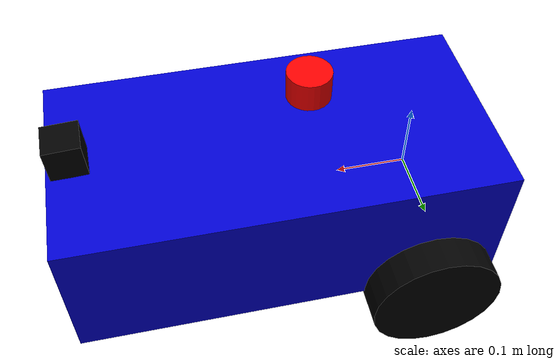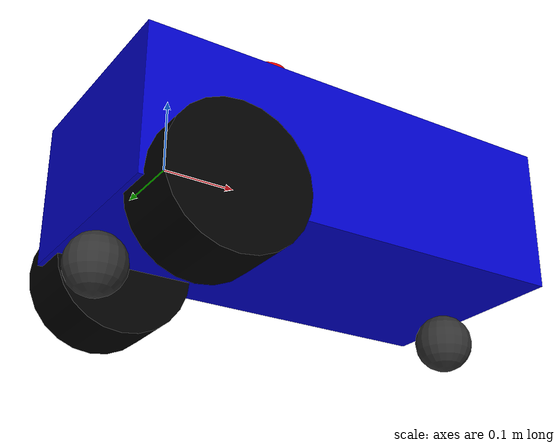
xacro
<?xml version="1.0"?>
<robot xmlns:xacro="http://www.ros.org/wiki/xacro" name="diffbot">

  <!-- Core robot kinematics and links -->
  <xacro:include filename="$(find diff_drive_hardware)/config/diffbot_description.xacro" />

  <!-- Gazebo simulation sensors, physics properties, and ros2_control plugin -->
  <xacro:include filename="$(find relobot_gazebo)/config/diffbot_gazebo_plugins.xacro" />

</robot>

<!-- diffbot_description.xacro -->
<robot xmlns:xacro="http://www.ros.org/wiki/xacro">

  <!-- Base Link (Root Frame) -->

  <!-- Base Link -->
  <link name="base_link">
    <visual>
      <origin xyz="0.2 0 0" rpy="0 0 0"/>
      <geometry>
        <box size="0.6 0.3 0.2"/>
      </geometry>
      <material name="blue">
        <color rgba="0 0 0.8 1"/>
      </material>
    </visual>
    <collision>
      <geometry>
        <box size="0.2 0.3 0.1"/>
      </geometry>
    </collision>
    <inertial>
      <origin xyz="0.18 0.0 -0.02" rpy="0 0 0"/>
      <mass value="12.0"/>
      <inertia ixx="0.15" ixy="0" ixz="0" iyy="0.40" iyz="0" izz="0.45"/>
    </inertial>
  </link>

  <link name="imu_link">
    <visual>
      <geometry>
        <box size="0.04 0.04 0.02"/>
      </geometry>
      <material name="orange">
        <color rgba="1 0.5 0 1"/>
      </material>
    </visual>
    <inertial>
      <mass value="0.01"/>
      <inertia ixx="1e-6" ixy="0" ixz="0" iyy="1e-6" iyz="0" izz="1e-6"/>
    </inertial>
  </link>

  <!-- Left Wheel -->
  <link name="left_wheel">
    <visual>
      <geometry>
        <cylinder radius="0.0937" length="0.1"/>
      </geometry>
      <material name="black">
        <color rgba="0 0 0 1"/>
      </material>
    </visual>
    <collision>
      <geometry>
        <cylinder radius="0.0937" length="0.1"/>
      </geometry>
    </collision>
    <inertial>
      <mass value="0.1"/>
      <inertia ixx="0.00003" ixy="0" ixz="0" iyy="0.00003" iyz="0" izz="0.00005"/>
    </inertial>
  </link>

  <!-- Right Wheel -->
  <link name="right_wheel">
    <visual>
      <geometry>
        <cylinder radius="0.0937" length="0.1"/>
      </geometry>
      <material name="black">
        <color rgba="0 0 0 1"/>
      </material>
    </visual>
    <collision>
      <geometry>
        <cylinder radius="0.0937" length="0.1"/>
      </geometry>
    </collision>
    <inertial>
      <mass value="0.1"/>
      <inertia ixx="0.00003" ixy="0" ixz="0" iyy="0.00003" iyz="0" izz="0.00005"/>
    </inertial>
  </link>

  <!-- Left Wheel Joint -->
  <joint name="left_wheel_joint" type="continuous">
    <parent link="base_link"/>
    <child link="left_wheel"/>
    <origin xyz="0 0.1475 -0.0937" rpy="-1.5707 0 0"/>
    <axis xyz="0 0 1"/>
  </joint>

  <!-- Right Wheel Joint -->
  <joint name="right_wheel_joint" type="continuous">
    <parent link="base_link"/>
    <child link="right_wheel"/>
    <origin xyz="0 -0.1475 -0.0937" rpy="-1.5707 0 0"/>
    <axis xyz="0 0 1"/>
  </joint>

  <joint name="imu_joint" type="fixed">
    <parent link="base_link"/>
    <child link="imu_link"/>
    <origin xyz="0.4 0 0.05" rpy="0 0 0"/>
  </joint>

  <!-- Lidar Link -->
  <link name="base_laser">
    <visual>
      <geometry>
        <cylinder radius="0.03" length="0.04"/>
      </geometry>
      <material name="red">
        <color rgba="1 0 0 1"/>
      </material>
    </visual>
    <collision>
      <geometry>
        <cylinder radius="0.03" length="0.04"/>
      </geometry>
    </collision>
    <inertial>
      <mass value="0.125"/>
      <inertia ixx="0.0001" ixy="0" ixz="0" iyy="0.0001" iyz="0" izz="0.0001"/>
    </inertial>
  </link>

  <joint name="lidar_joint" type="fixed">
    <parent link="base_link"/>
    <child link="base_laser"/>
    <origin xyz="0.15 0 0.18" rpy="0 3.14159 -1.59116"/>
  </joint>

  <!-- Camera Link -->
  <link name="camera">
    <visual>
      <geometry>
        <box size="0.05 0.05 0.05"/>
      </geometry>
      <material name="black">
        <color rgba="0 0 0 1"/>
      </material>
    </visual>
    <collision>
      <geometry>
        <box size="0.05 0.05 0.05"/>
      </geometry>
    </collision>
    <inertial>
      <mass value="0.05"/>
      <inertia ixx="0.0001" ixy="0" ixz="0" iyy="0.0001" iyz="0" izz="0.0001"/>
    </inertial>
  </link>

  <joint name="camera_joint" type="fixed">
    <parent link="base_link"/>
    <child link="camera"/>
    <origin xyz="0.47 0 0.125" rpy="-1.6100 0 -1.5500"/>
  </joint>

</robot>

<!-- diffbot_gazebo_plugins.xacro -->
<robot xmlns:xacro="http://www.ros.org/wiki/xacro">

  <!-- Front Caster Wheel for balance -->
  <link name="front_caster">
    <visual>
      <geometry>
        <sphere radius="0.04"/>
      </geometry>
      <material name="dark_gray">
        <color rgba="0.2 0.2 0.2 1.0"/>
      </material>
    </visual>
    <collision>
      <geometry>
        <sphere radius="0.04"/>
      </geometry>
    </collision>
    <inertial>
      <mass value="0.1"/>
      <inertia ixx="0.000064" ixy="0" ixz="0" iyy="0.000064" iyz="0" izz="0.000064"/>
    </inertial>
  </link>

  <joint name="front_caster_joint" type="fixed">
    <parent link="base_link"/>
    <child link="front_caster"/>
    <origin xyz="0.45 0.0 -0.1474" rpy="0 0 0"/>
  </joint>

  <!-- Rear Caster Wheel for balance -->
  <link name="rear_caster">
    <visual>
      <geometry>
        <sphere radius="0.04"/>
      </geometry>
      <material name="dark_gray">
        <color rgba="0.2 0.2 0.2 1.0"/>
      </material>
    </visual>
    <collision>
      <geometry>
        <sphere radius="0.04"/>
      </geometry>
    </collision>
    <inertial>
      <mass value="0.1"/>
      <inertia ixx="0.000064" ixy="0" ixz="0" iyy="0.000064" iyz="0" izz="0.000064"/>
    </inertial>
  </link>

  <joint name="rear_caster_joint" type="fixed">
    <parent link="base_link"/>
    <child link="rear_caster"/>
    <origin xyz="-0.08 0.0 -0.1474" rpy="0 0 0"/>
  </joint>

  <!-- Gazebo Friction and Contact Properties -->
  <gazebo reference="left_wheel">
    <mu1>1.8</mu1>
    <mu2>1.8</mu2>
    <kp>1000000.0</kp>
    <kd>10.0</kd>
    <minDepth>0.001</minDepth>
    <material>Gazebo/Black</material>
  </gazebo>

  <gazebo reference="right_wheel">
    <mu1>1.8</mu1>
    <mu2>1.8</mu2>
    <kp>1000000.0</kp>
    <kd>10.0</kd>
    <minDepth>0.001</minDepth>
    <material>Gazebo/Black</material>
  </gazebo>

  <gazebo reference="front_caster">
    <mu1>0.001</mu1>
    <mu2>0.001</mu2>
    <kp>1000000.0</kp>
    <kd>10.0</kd>
    <surface>
      <friction>
        <ode>
          <mu>0.001</mu>
          <mu2>0.001</mu2>
          <slip1>1.0</slip1>
          <slip2>1.0</slip2>
        </ode>
      </friction>
    </surface>
    <material>Gazebo/DarkGrey</material>
  </gazebo>

  <gazebo reference="rear_caster">
    <mu1>0.001</mu1>
    <mu2>0.001</mu2>
    <kp>1000000.0</kp>
    <kd>10.0</kd>
    <surface>
      <friction>
        <ode>
          <mu>0.001</mu>
          <mu2>0.001</mu2>
          <slip1>1.0</slip1>
          <slip2>1.0</slip2>
        </ode>
      </friction>
    </surface>
    <material>Gazebo/DarkGrey</material>
  </gazebo>

  <gazebo reference="base_link">
    <material>Gazebo/Blue</material>
  </gazebo>

  <!-- LiDAR Sensor -->
  <gazebo reference="base_laser">
    <material>Gazebo/Red</material>
    <sensor name="lidar" type="gpu_lidar">
      <pose relative_to="base_laser">0 0 0 0 0 0</pose>
      <topic>/scan</topic>
      <update_rate>10</update_rate>
      <gz_frame_id>base_laser</gz_frame_id>
      <always_on>true</always_on>
      <visualize>true</visualize>
      <ray>
        <scan>
          <horizontal>
            <samples>720</samples>
            <resolution>1</resolution>
            <min_angle>-3.14159265</min_angle>
            <max_angle>3.14159265</max_angle>
          </horizontal>
        </scan>
        <range>
          <min>0.02</min>
          <max>25.0</max>
          <resolution>0.003</resolution>
        </range>
        <noise>
          <type>gaussian</type>
          <mean>0.0</mean>
          <stddev>0.005</stddev>
        </noise>
      </ray>
    </sensor>
  </gazebo>

  <!-- IMU Sensor -->
  <gazebo reference="imu_link">
    <material>Gazebo/Orange</material>
    <sensor name="imu_sensor" type="imu">
      <pose relative_to="base_link">0.40 0 0.05 0 0 0</pose>
      <topic>/imu</topic>
      <update_rate>50</update_rate>
      <gz_frame_id>imu_link</gz_frame_id>
      <always_on>true</always_on>
      <visualize>false</visualize>
      <imu>
        <angular_velocity>
          <x><noise type="gaussian"><mean>0.0</mean><stddev>0.0002</stddev></noise></x>
          <y><noise type="gaussian"><mean>0.0</mean><stddev>0.0002</stddev></noise></y>
          <z><noise type="gaussian"><mean>0.0</mean><stddev>0.0002</stddev></noise></z>
        </angular_velocity>
        <linear_acceleration>
          <x><noise type="gaussian"><mean>0.0</mean><stddev>0.01</stddev></noise></x>
          <y><noise type="gaussian"><mean>0.0</mean><stddev>0.01</stddev></noise></y>
          <z><noise type="gaussian"><mean>0.0</mean><stddev>0.01</stddev></noise></z>
        </linear_acceleration>
      </imu>
    </sensor>
  </gazebo>

  <!-- Camera Sensor -->
  <gazebo reference="camera">
    <material>Gazebo/Black</material>
    <sensor name="camera" type="camera">
      <pose relative_to="base_link">0.50 0 0.14 0 0.05 0</pose>
      <topic>/camera/image_raw</topic>
      <update_rate>30</update_rate>
      <gz_frame_id>camera</gz_frame_id>
      <always_on>true</always_on>
      <visualize>false</visualize>
      <camera>
        <horizontal_fov>1.74533</horizontal_fov>
        <image>
          <width>640</width>
          <height>480</height>
          <format>R8G8B8</format>
        </image>
        <clip>
          <near>0.05</near>
          <far>100.0</far>
        </clip>
        <noise>
          <type>gaussian</type>
          <mean>0.0</mean>
          <stddev>0.007</stddev>
        </noise>
      </camera>
    </sensor>
  </gazebo>

  <!-- Gazebo Sim ros2_control plugin -->
  <gazebo>
    <plugin filename="gz_ros2_control-system" name="gz_ros2_control::GazeboSimROS2ControlPlugin">
      <parameters>$(find relobot_gazebo)/config/gazebo_controllers.yaml</parameters>
    </plugin>
  </gazebo>

  <ros2_control name="GazeboSimSystem" type="system">
    <hardware>
      <plugin>gz_ros2_control/GazeboSimSystem</plugin>
    </hardware>
    <joint name="left_wheel_joint">
      <command_interface name="velocity">
        <param name="min">-10</param>
        <param name="max">10</param>
      </command_interface>
      <state_interface name="position"/>
      <state_interface name="velocity"/>
    </joint>
    <joint name="right_wheel_joint">
      <command_interface name="velocity">
        <param name="min">-10</param>
        <param name="max">10</param>
      </command_interface>
      <state_interface name="position"/>
      <state_interface name="velocity"/>
    </joint>
  </ros2_control>

</robot>
